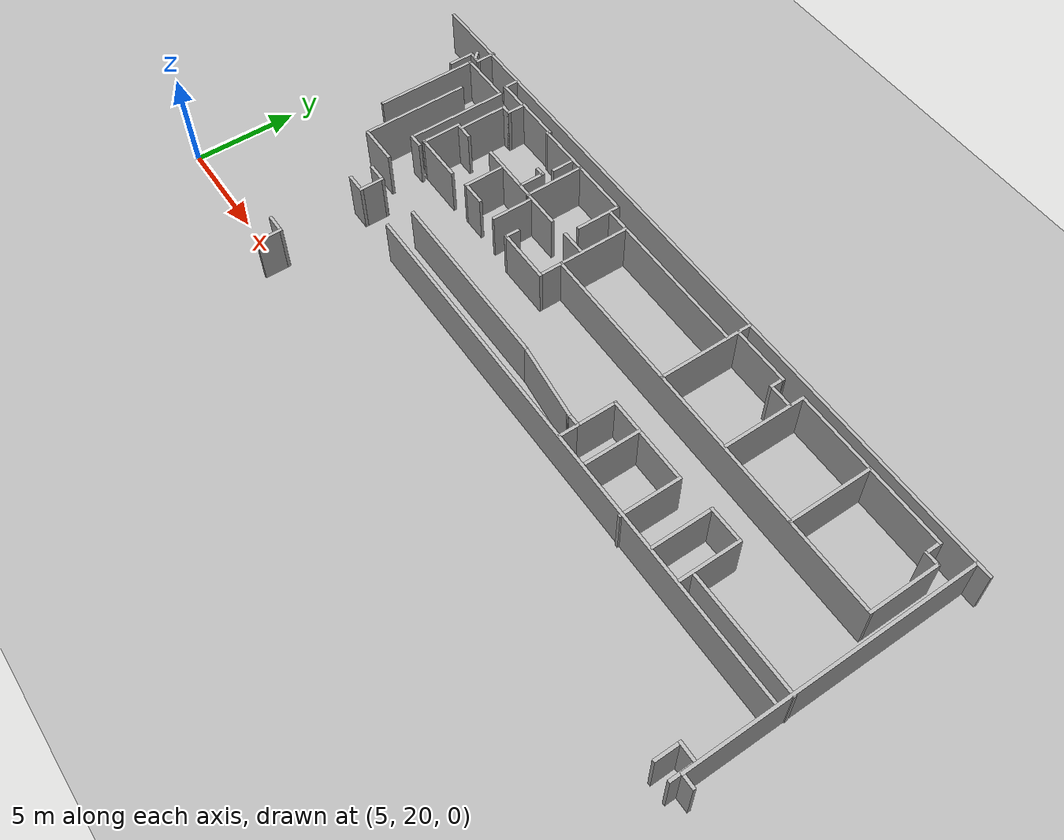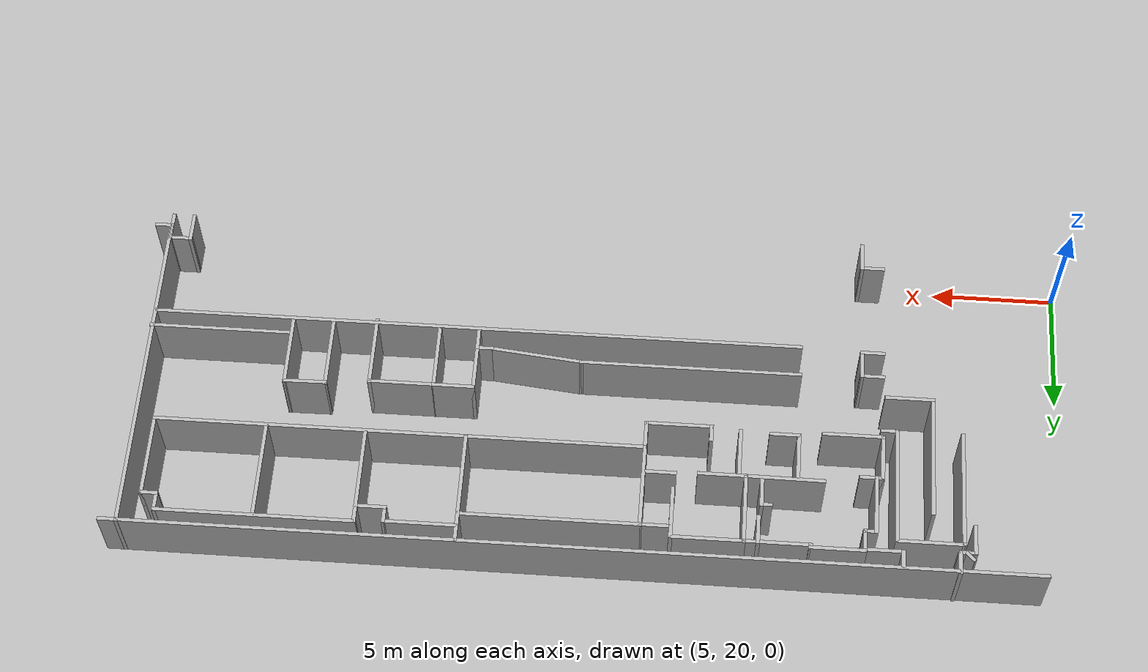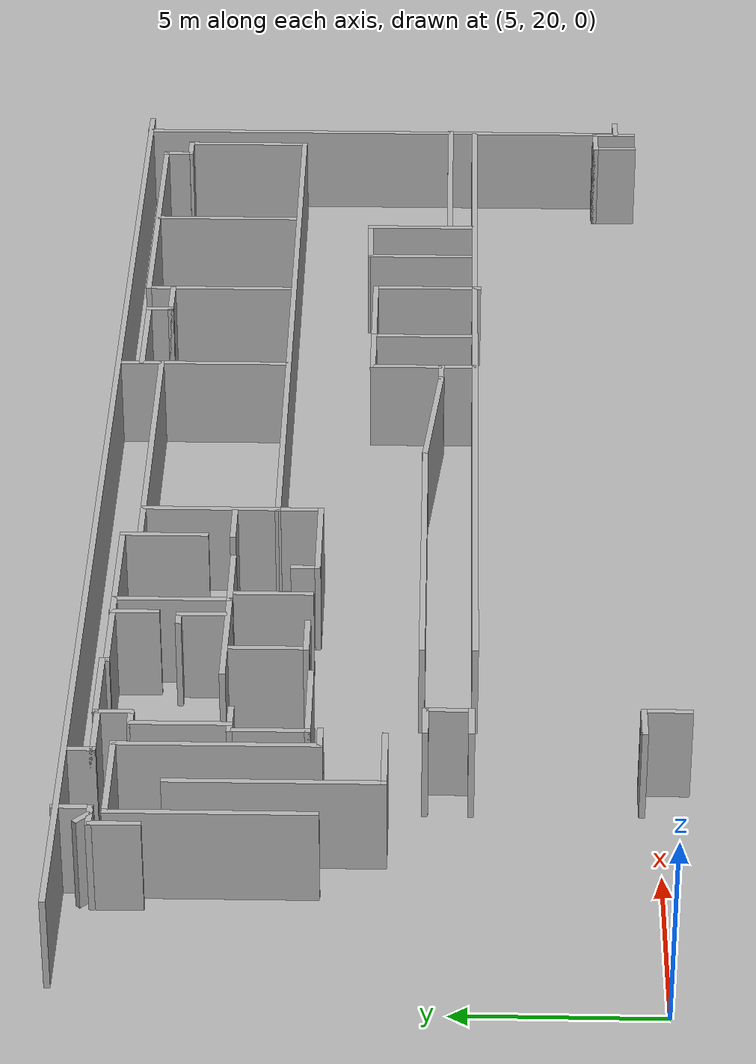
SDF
<sdf version="1.9">
 <world name="tsudanuma2-3">
  <model name="ground_plane">
   <static>true</static>
   <link name="link">
    <collision name="collision">
     <geometry><plane><normal>0 0 1</normal><size>100 100</size></plane></geometry>
     <surface>
      <contact><collide_bitmask>65535</collide_bitmask></contact>
      <friction><ode><mu>100</mu><mu2>50</mu2></ode></friction>
     </surface>
    </collision>
    <visual name="visual">
     <cast_shadows>false</cast_shadows>
     <geometry><plane><normal>0 0 1</normal><size>100 100</size></plane></geometry>
     <material>
      <ambient>0.5 0.5 0.5 1</ambient>
      <diffuse>0.7 0.7 0.7 1</diffuse>
      <specular>0.1 0.1 0.1 1</specular>
     </material>
    </visual>
   </link>
  </model>
  <model name="Tsudanuma_2-3-without_door">
   <pose>11.859500000000001 12.3796 0 0 0 0</pose>
   <link name="Wall_12">
    <collision name="Wall_12_Collision">
     <geometry><box><size>37 0.14999999999999999 2.5</size></box></geometry>
     <pose>0 0 1.25 0 0 0</pose>
    </collision>
    <visual name="Wall_12_Visual">
     <pose>0 0 1.25 0 0 0</pose>
     <geometry><box><size>37 0.14999999999999999 2.5</size></box></geometry>
     <material>
      <ambient>0.5 0.5 0.5 1</ambient>
      <diffuse>0.7 0.7 0.7 1</diffuse>
      <specular>0.1 0.1 0.1 1</specular>
     </material>
     <meta><layer>0</layer></meta>
    </visual>
    <pose>12.4529 21.66 0 0 0 3.1415899999999999</pose>
   </link>
   <link name="Wall_237">
    <collision name="Wall_237_Collision">
     <geometry><box><size>9 0.14999999999999999 2.5</size></box></geometry>
     <pose>0 0 1.25 0 0 0</pose>
    </collision>
    <visual name="Wall_237_Visual">
     <pose>0 0 1.25 0 0 0</pose>
     <geometry><box><size>9 0.14999999999999999 2.5</size></box></geometry>
     <material>
      <ambient>0.5 0.5 0.5 1</ambient>
      <diffuse>0.7 0.7 0.7 1</diffuse>
      <specular>0.1 0.1 0.1 1</specular>
     </material>
     <meta><layer>0</layer></meta>
    </visual>
    <pose>8.2090499999999995 13.3088 0 0 0 0</pose>
   </link>
   <link name="Wall_239">
    <collision name="Wall_239_Collision">
     <geometry><box><size>3.8246099999999998 0.14999999999999999 2.5</size></box></geometry>
     <pose>0 0 1.25 0 0 0</pose>
    </collision>
    <visual name="Wall_239_Visual">
     <pose>0 0 1.25 0 0 0</pose>
     <geometry><box><size>3.8246099999999998 0.14999999999999999 2.5</size></box></geometry>
     <material>
      <ambient>0.5 0.5 0.5 1</ambient>
      <diffuse>0.7 0.7 0.7 1</diffuse>
      <specular>0.1 0.1 0.1 1</specular>
     </material>
     <meta><layer>0</layer></meta>
    </visual>
    <pose>14.4611 13.114800000000001 0 0 0 3.0358299999999998</pose>
   </link>
   <link name="Wall_241">
    <collision name="Wall_241_Collision">
     <geometry><box><size>0.75 0.14999999999999999 2.5</size></box></geometry>
     <pose>0 0 1.25 0 0 0</pose>
    </collision>
    <visual name="Wall_241_Visual">
     <pose>0 0 1.25 0 0 0</pose>
     <geometry><box><size>0.75 0.14999999999999999 2.5</size></box></geometry>
     <material>
      <ambient>0.5 0.5 0.5 1</ambient>
      <diffuse>0.7 0.7 0.7 1</diffuse>
      <specular>0.1 0.1 0.1 1</specular>
     </material>
     <meta><layer>0</layer></meta>
    </visual>
    <pose>16.588100000000001 12.9209 0 0 0 0</pose>
   </link>
   <link name="Wall_242">
    <collision name="Wall_242_Collision">
     <geometry><box><size>2 0.14999999999999999 2.5</size></box></geometry>
     <pose>0 0 1.25 0 0 0</pose>
    </collision>
    <visual name="Wall_242_Visual">
     <pose>0 0 1.25 0 0 0</pose>
     <geometry><box><size>2 0.14999999999999999 2.5</size></box></geometry>
     <material>
      <ambient>0.5 0.5 0.5 1</ambient>
      <diffuse>0.7 0.7 0.7 1</diffuse>
      <specular>0.1 0.1 0.1 1</specular>
     </material>
     <meta><layer>0</layer></meta>
    </visual>
    <pose>16.888100000000001 13.8459 0 0 0 1.5708</pose>
   </link>
   <link name="Wall_243">
    <collision name="Wall_243_Collision">
     <geometry><box><size>1.75 0.14999999999999999 2.5</size></box></geometry>
     <pose>0 0 1.25 0 0 0</pose>
    </collision>
    <visual name="Wall_243_Visual">
     <pose>0 0 1.25 0 0 0</pose>
     <geometry><box><size>1.75 0.14999999999999999 2.5</size></box></geometry>
     <material>
      <ambient>0.5 0.5 0.5 1</ambient>
      <diffuse>0.7 0.7 0.7 1</diffuse>
      <specular>0.1 0.1 0.1 1</specular>
     </material>
     <meta><layer>0</layer></meta>
    </visual>
    <pose>17.688099999999999 14.770899999999999 0 0 0 0</pose>
   </link>
   <link name="Wall_244">
    <collision name="Wall_244_Collision">
     <geometry><box><size>2.75 0.14999999999999999 2.5</size></box></geometry>
     <pose>0 0 1.25 0 0 0</pose>
    </collision>
    <visual name="Wall_244_Visual">
     <pose>0 0 1.25 0 0 0</pose>
     <geometry><box><size>2.75 0.14999999999999999 2.5</size></box></geometry>
     <material>
      <ambient>0.5 0.5 0.5 1</ambient>
      <diffuse>0.7 0.7 0.7 1</diffuse>
      <specular>0.1 0.1 0.1 1</specular>
     </material>
     <meta><layer>0</layer></meta>
    </visual>
    <pose>18.488099999999999 13.4709 0 0 0 -1.5708</pose>
   </link>
   <link name="Wall_246">
    <collision name="Wall_246_Collision">
     <geometry><box><size>1 0.14999999999999999 2.5</size></box></geometry>
     <pose>0 0 1.25 0 0 0</pose>
    </collision>
    <visual name="Wall_246_Visual">
     <pose>0 0 1.25 0 0 0</pose>
     <geometry><box><size>1 0.14999999999999999 2.5</size></box></geometry>
     <material>
      <ambient>0.5 0.5 0.5 1</ambient>
      <diffuse>0.7 0.7 0.7 1</diffuse>
      <specular>0.1 0.1 0.1 1</specular>
     </material>
     <meta><layer>0</layer></meta>
    </visual>
    <pose>16.888100000000001 12.495900000000001 0 0 0 -1.5708</pose>
   </link>
   <link name="Wall_248">
    <collision name="Wall_248_Collision">
     <geometry><box><size>2.75 0.14999999999999999 2.5</size></box></geometry>
     <pose>0 0 1.25 0 0 0</pose>
    </collision>
    <visual name="Wall_248_Visual">
     <pose>0 0 1.25 0 0 0</pose>
     <geometry><box><size>2.75 0.14999999999999999 2.5</size></box></geometry>
     <material>
      <ambient>0.5 0.5 0.5 1</ambient>
      <diffuse>0.7 0.7 0.7 1</diffuse>
      <specular>0.1 0.1 0.1 1</specular>
     </material>
     <meta><layer>0</layer></meta>
    </visual>
    <pose>19.7881 14.770899999999999 0 0 0 0</pose>
   </link>
   <link name="Wall_249">
    <collision name="Wall_249_Collision">
     <geometry><box><size>3 0.14999999999999999 2.5</size></box></geometry>
     <pose>0 0 1.25 0 0 0</pose>
    </collision>
    <visual name="Wall_249_Visual">
     <pose>0 0 1.25 0 0 0</pose>
     <geometry><box><size>3 0.14999999999999999 2.5</size></box></geometry>
     <material>
      <ambient>0.5 0.5 0.5 1</ambient>
      <diffuse>0.7 0.7 0.7 1</diffuse>
      <specular>0.1 0.1 0.1 1</specular>
     </material>
     <meta><layer>0</layer></meta>
    </visual>
    <pose>21.088100000000001 13.3459 0 0 0 -1.5708</pose>
   </link>
   <link name="Wall_251">
    <collision name="Wall_251_Collision">
     <geometry><box><size>3 0.14999999999999999 2.5</size></box></geometry>
     <pose>0 0 1.25 0 0 0</pose>
    </collision>
    <visual name="Wall_251_Visual">
     <pose>0 0 1.25 0 0 0</pose>
     <geometry><box><size>3 0.14999999999999999 2.5</size></box></geometry>
     <material>
      <ambient>0.5 0.5 0.5 1</ambient>
      <diffuse>0.7 0.7 0.7 1</diffuse>
      <specular>0.1 0.1 0.1 1</specular>
     </material>
     <meta><layer>0</layer></meta>
    </visual>
    <pose>22.851900000000001 13.535299999999999 0 0 0 1.5708</pose>
   </link>
   <link name="Wall_252">
    <collision name="Wall_252_Collision">
     <geometry><box><size>1.78264 0.14999999999999999 2.5</size></box></geometry>
     <pose>0 0 1.25 0 0 0</pose>
    </collision>
    <visual name="Wall_252_Visual">
     <pose>0 0 1.25 0 0 0</pose>
     <geometry><box><size>1.78264 0.14999999999999999 2.5</size></box></geometry>
     <material>
      <ambient>0.5 0.5 0.5 1</ambient>
      <diffuse>0.7 0.7 0.7 1</diffuse>
      <specular>0.1 0.1 0.1 1</specular>
     </material>
     <meta><layer>0</layer></meta>
    </visual>
    <pose>23.668199999999999 14.9702 0 0 0 0.012109999999999999</pose>
   </link>
   <link name="Wall_253">
    <collision name="Wall_253_Collision">
     <geometry><box><size>3 0.14999999999999999 2.5</size></box></geometry>
     <pose>0 0 1.25 0 0 0</pose>
    </collision>
    <visual name="Wall_253_Visual">
     <pose>0 0 1.25 0 0 0</pose>
     <geometry><box><size>3 0.14999999999999999 2.5</size></box></geometry>
     <material>
      <ambient>0.5 0.5 0.5 1</ambient>
      <diffuse>0.7 0.7 0.7 1</diffuse>
      <specular>0.1 0.1 0.1 1</specular>
     </material>
     <meta><layer>0</layer></meta>
    </visual>
    <pose>24.504200000000001 13.555 0 0 0 -1.5708</pose>
   </link>
   <link name="Wall_256">
    <collision name="Wall_256_Collision">
     <geometry><box><size>5.75 0.14999999999999999 2.5</size></box></geometry>
     <pose>0 0 1.25 0 0 0</pose>
    </collision>
    <visual name="Wall_256_Visual">
     <pose>0 0 1.25 0 0 0</pose>
     <geometry><box><size>5.75 0.14999999999999999 2.5</size></box></geometry>
     <material>
      <ambient>0.5 0.5 0.5 1</ambient>
      <diffuse>0.7 0.7 0.7 1</diffuse>
      <specular>0.1 0.1 0.1 1</specular>
     </material>
     <meta><layer>0</layer></meta>
    </visual>
    <pose>27.454999999999998 12.7232 0 0 0 3.1415899999999999</pose>
   </link>
   <link name="Wall_258">
    <collision name="Wall_258_Collision">
     <geometry><box><size>14 0.14999999999999999 2.5</size></box></geometry>
     <pose>0 0 1.25 0 0 0</pose>
    </collision>
    <visual name="Wall_258_Visual">
     <pose>0 0 1.25 0 0 0</pose>
     <geometry><box><size>14 0.14999999999999999 2.5</size></box></geometry>
     <material>
      <ambient>0.5 0.5 0.5 1</ambient>
      <diffuse>0.7 0.7 0.7 1</diffuse>
      <specular>0.1 0.1 0.1 1</specular>
     </material>
     <meta><layer>0</layer></meta>
    </visual>
    <pose>30.213100000000001 14.7469 0 0 0 -1.5708</pose>
   </link>
   <link name="Wall_260">
    <collision name="Wall_260_Collision">
     <geometry><box><size>0.75 0.14999999999999999 2.5</size></box></geometry>
     <pose>0 0 1.25 0 0 0</pose>
    </collision>
    <visual name="Wall_260_Visual">
     <pose>0 0 1.25 0 0 0</pose>
     <geometry><box><size>0.75 0.14999999999999999 2.5</size></box></geometry>
     <material>
      <ambient>0.5 0.5 0.5 1</ambient>
      <diffuse>0.7 0.7 0.7 1</diffuse>
      <specular>0.1 0.1 0.1 1</specular>
     </material>
     <meta><layer>0</layer></meta>
    </visual>
    <pose>30.513100000000001 7.82186 0 0 0 0</pose>
   </link>
   <link name="Wall_262">
    <collision name="Wall_262_Collision">
     <geometry><box><size>3.5 0.14999999999999999 2.5</size></box></geometry>
     <pose>0 0 1.25 0 0 0</pose>
    </collision>
    <visual name="Wall_262_Visual">
     <pose>0 0 1.25 0 0 0</pose>
     <geometry><box><size>3.5 0.14999999999999999 2.5</size></box></geometry>
     <material>
      <ambient>0.5 0.5 0.5 1</ambient>
      <diffuse>0.7 0.7 0.7 1</diffuse>
      <specular>0.1 0.1 0.1 1</specular>
     </material>
     <meta><layer>0</layer></meta>
    </visual>
    <pose>29.435600000000001 18.726299999999998 0 0 0 -1.5708</pose>
   </link>
   <link name="Wall_263">
    <collision name="Wall_263_Collision">
     <geometry><box><size>19.75 0.14999999999999999 2.5</size></box></geometry>
     <pose>0 0 1.25 0 0 0</pose>
    </collision>
    <visual name="Wall_263_Visual">
     <pose>0 0 1.25 0 0 0</pose>
     <geometry><box><size>19.75 0.14999999999999999 2.5</size></box></geometry>
     <material>
      <ambient>0.5 0.5 0.5 1</ambient>
      <diffuse>0.7 0.7 0.7 1</diffuse>
      <specular>0.1 0.1 0.1 1</specular>
     </material>
     <meta><layer>0</layer></meta>
    </visual>
    <pose>19.6356 17.051300000000001 0 0 0 3.1415899999999999</pose>
   </link>
   <link name="Wall_264">
    <collision name="Wall_264_Collision">
     <geometry><box><size>1.25 0.14999999999999999 2.5</size></box></geometry>
     <pose>0 0 1.25 0 0 0</pose>
    </collision>
    <visual name="Wall_264_Visual">
     <pose>0 0 1.25 0 0 0</pose>
     <geometry><box><size>1.25 0.14999999999999999 2.5</size></box></geometry>
     <material>
      <ambient>0.5 0.5 0.5 1</ambient>
      <diffuse>0.7 0.7 0.7 1</diffuse>
      <specular>0.1 0.1 0.1 1</specular>
     </material>
     <meta><layer>0</layer></meta>
    </visual>
    <pose>9.8356399999999997 16.501300000000001 0 0 0 -1.5708</pose>
   </link>
   <link name="Wall_265">
    <collision name="Wall_265_Collision">
     <geometry><box><size>2.75 0.14999999999999999 2.5</size></box></geometry>
     <pose>0 0 1.25 0 0 0</pose>
    </collision>
    <visual name="Wall_265_Visual">
     <pose>0 0 1.25 0 0 0</pose>
     <geometry><box><size>2.75 0.14999999999999999 2.5</size></box></geometry>
     <material>
      <ambient>0.5 0.5 0.5 1</ambient>
      <diffuse>0.7 0.7 0.7 1</diffuse>
      <specular>0.1 0.1 0.1 1</specular>
     </material>
     <meta><layer>0</layer></meta>
    </visual>
    <pose>8.5356400000000008 15.9513 0 0 0 3.1415899999999999</pose>
   </link>
   <link name="Wall_266">
    <collision name="Wall_266_Collision">
     <geometry><box><size>0.75 0.14999999999999999 2.5</size></box></geometry>
     <pose>0 0 1.25 0 0 0</pose>
    </collision>
    <visual name="Wall_266_Visual">
     <pose>0 0 1.25 0 0 0</pose>
     <geometry><box><size>0.75 0.14999999999999999 2.5</size></box></geometry>
     <material>
      <ambient>0.5 0.5 0.5 1</ambient>
      <diffuse>0.7 0.7 0.7 1</diffuse>
      <specular>0.1 0.1 0.1 1</specular>
     </material>
     <meta><layer>0</layer></meta>
    </visual>
    <pose>7.2356400000000001 16.251300000000001 0 0 0 1.5708</pose>
   </link>
   <link name="Wall_268">
    <collision name="Wall_268_Collision">
     <geometry><box><size>0.75 0.14999999999999999 2.5</size></box></geometry>
     <pose>0 0 1.25 0 0 0</pose>
    </collision>
    <visual name="Wall_268_Visual">
     <pose>0 0 1.25 0 0 0</pose>
     <geometry><box><size>0.75 0.14999999999999999 2.5</size></box></geometry>
     <material>
      <ambient>0.5 0.5 0.5 1</ambient>
      <diffuse>0.7 0.7 0.7 1</diffuse>
      <specular>0.1 0.1 0.1 1</specular>
     </material>
     <meta><layer>0</layer></meta>
    </visual>
    <pose>28.8218 20.806100000000001 0 0 0 -1.5708</pose>
   </link>
   <link name="Wall_271">
    <collision name="Wall_271_Collision">
     <geometry><box><size>0.75 0.14999999999999999 2.5</size></box></geometry>
     <pose>0 0 1.25 0 0 0</pose>
    </collision>
    <visual name="Wall_271_Visual">
     <pose>0 0 1.25 0 0 0</pose>
     <geometry><box><size>0.75 0.14999999999999999 2.5</size></box></geometry>
     <material>
      <ambient>0.5 0.5 0.5 1</ambient>
      <diffuse>0.7 0.7 0.7 1</diffuse>
      <specular>0.1 0.1 0.1 1</specular>
     </material>
     <meta><layer>0</layer></meta>
    </visual>
    <pose>29.1356 20.401299999999999 0 0 0 3.1415899999999999</pose>
   </link>
   <link name="Wall_273">
    <collision name="Wall_273_Collision">
     <geometry><box><size>8 0.14999999999999999 2.5</size></box></geometry>
     <pose>0 0 1.25 0 0 0</pose>
    </collision>
    <visual name="Wall_273_Visual">
     <pose>0 0 1.25 0 0 0</pose>
     <geometry><box><size>8 0.14999999999999999 2.5</size></box></geometry>
     <material>
      <ambient>0.5 0.5 0.5 1</ambient>
      <diffuse>0.7 0.7 0.7 1</diffuse>
      <specular>0.1 0.1 0.1 1</specular>
     </material>
     <meta><layer>0</layer></meta>
    </visual>
    <pose>24.896799999999999 21.106100000000001 0 0 0 3.1415899999999999</pose>
   </link>
   <link name="Wall_274">
    <collision name="Wall_274_Collision">
     <geometry><box><size>4.0999999999999996 0.14999999999999999 2.5</size></box></geometry>
     <pose>0 0 1.25 0 0 0</pose>
    </collision>
    <visual name="Wall_274_Visual">
     <pose>0 0 1.25 0 0 0</pose>
     <geometry><box><size>4.0999999999999996 0.14999999999999999 2.5</size></box></geometry>
     <material>
      <ambient>0.5 0.5 0.5 1</ambient>
      <diffuse>0.7 0.7 0.7 1</diffuse>
      <specular>0.1 0.1 0.1 1</specular>
     </material>
     <meta><layer>0</layer></meta>
    </visual>
    <pose>20.971800000000002 19.1311 0 0 0 -1.5708</pose>
   </link>
   <link name="Wall_276">
    <collision name="Wall_276_Collision">
     <geometry><box><size>4.0999999999999996 0.14999999999999999 2.5</size></box></geometry>
     <pose>0 0 1.25 0 0 0</pose>
    </collision>
    <visual name="Wall_276_Visual">
     <pose>0 0 1.25 0 0 0</pose>
     <geometry><box><size>4.0999999999999996 0.14999999999999999 2.5</size></box></geometry>
     <material>
      <ambient>0.5 0.5 0.5 1</ambient>
      <diffuse>0.7 0.7 0.7 1</diffuse>
      <specular>0.1 0.1 0.1 1</specular>
     </material>
     <meta><layer>0</layer></meta>
    </visual>
    <pose>24.9422 19.0655 0 0 0 1.5708</pose>
   </link>
   <link name="Wall_278">
    <collision name="Wall_278_Collision">
     <geometry><box><size>4.7000000000000002 0.14999999999999999 2.5</size></box></geometry>
     <pose>0 0 1.25 0 0 0</pose>
    </collision>
    <visual name="Wall_278_Visual">
     <pose>0 0 1.25 0 0 0</pose>
     <geometry><box><size>4.7000000000000002 0.14999999999999999 2.5</size></box></geometry>
     <material>
      <ambient>0.5 0.5 0.5 1</ambient>
      <diffuse>0.7 0.7 0.7 1</diffuse>
      <specular>0.1 0.1 0.1 1</specular>
     </material>
     <meta><layer>0</layer></meta>
    </visual>
    <pose>16.9617 19.354199999999999 0 0 0 1.5708</pose>
   </link>
   <link name="Wall_280">
    <collision name="Wall_280_Collision">
     <geometry><box><size>3 0.14999999999999999 2.5</size></box></geometry>
     <pose>0 0 1.25 0 0 0</pose>
    </collision>
    <visual name="Wall_280_Visual">
     <pose>0 0 1.25 0 0 0</pose>
     <geometry><box><size>3 0.14999999999999999 2.5</size></box></geometry>
     <material>
      <ambient>0.5 0.5 0.5 1</ambient>
      <diffuse>0.7 0.7 0.7 1</diffuse>
      <specular>0.1 0.1 0.1 1</specular>
     </material>
     <meta><layer>0</layer></meta>
    </visual>
    <pose>18.398 21.0242 0 0 0 0</pose>
   </link>
   <link name="Wall_281">
    <collision name="Wall_281_Collision">
     <geometry><box><size>0.75 0.14999999999999999 2.5</size></box></geometry>
     <pose>0 0 1.25 0 0 0</pose>
    </collision>
    <visual name="Wall_281_Visual">
     <pose>0 0 1.25 0 0 0</pose>
     <geometry><box><size>0.75 0.14999999999999999 2.5</size></box></geometry>
     <material>
      <ambient>0.5 0.5 0.5 1</ambient>
      <diffuse>0.7 0.7 0.7 1</diffuse>
      <specular>0.1 0.1 0.1 1</specular>
     </material>
     <meta><layer>0</layer></meta>
    </visual>
    <pose>19.823 20.7242 0 0 0 -1.5708</pose>
   </link>
   <link name="Wall_282">
    <collision name="Wall_282_Collision">
     <geometry><box><size>1.25 0.14999999999999999 2.5</size></box></geometry>
     <pose>0 0 1.25 0 0 0</pose>
    </collision>
    <visual name="Wall_282_Visual">
     <pose>0 0 1.25 0 0 0</pose>
     <geometry><box><size>1.25 0.14999999999999999 2.5</size></box></geometry>
     <material>
      <ambient>0.5 0.5 0.5 1</ambient>
      <diffuse>0.7 0.7 0.7 1</diffuse>
      <specular>0.1 0.1 0.1 1</specular>
     </material>
     <meta><layer>0</layer></meta>
    </visual>
    <pose>20.373000000000001 20.424199999999999 0 0 0 0</pose>
   </link>
   <link name="Wall_284">
    <collision name="Wall_284_Collision">
     <geometry><box><size>7.25 0.14999999999999999 2.5</size></box></geometry>
     <pose>0 0 1.25 0 0 0</pose>
    </collision>
    <visual name="Wall_284_Visual">
     <pose>0 0 1.25 0 0 0</pose>
     <geometry><box><size>7.25 0.14999999999999999 2.5</size></box></geometry>
     <material>
      <ambient>0.5 0.5 0.5 1</ambient>
      <diffuse>0.7 0.7 0.7 1</diffuse>
      <specular>0.1 0.1 0.1 1</specular>
     </material>
     <meta><layer>0</layer></meta>
    </visual>
    <pose>13.400399999999999 20.492999999999999 0 0 0 3.1415899999999999</pose>
   </link>
   <link name="Wall_285">
    <collision name="Wall_285_Collision">
     <geometry><box><size>3.59171 0.14999999999999999 2.5</size></box></geometry>
     <pose>0 0 1.25 0 0 0</pose>
    </collision>
    <visual name="Wall_285_Visual">
     <pose>0 0 1.25 0 0 0</pose>
     <geometry><box><size>3.59171 0.14999999999999999 2.5</size></box></geometry>
     <material>
      <ambient>0.5 0.5 0.5 1</ambient>
      <diffuse>0.7 0.7 0.7 1</diffuse>
      <specular>0.1 0.1 0.1 1</specular>
     </material>
     <meta><layer>0</layer></meta>
    </visual>
    <pose>9.8430099999999996 18.772099999999998 0 0 0 -1.57508</pose>
   </link>
   <link name="Wall_287">
    <collision name="Wall_287_Collision">
     <geometry><box><size>1.25 0.14999999999999999 2.5</size></box></geometry>
     <pose>0 0 1.25 0 0 0</pose>
    </collision>
    <visual name="Wall_287_Visual">
     <pose>0 0 1.25 0 0 0</pose>
     <geometry><box><size>1.25 0.14999999999999999 2.5</size></box></geometry>
     <material>
      <ambient>0.5 0.5 0.5 1</ambient>
      <diffuse>0.7 0.7 0.7 1</diffuse>
      <specular>0.1 0.1 0.1 1</specular>
     </material>
     <meta><layer>0</layer></meta>
    </visual>
    <pose>9.3003900000000002 20.492999999999999 0 0 0 3.1415899999999999</pose>
   </link>
   <link name="Wall_289">
    <collision name="Wall_289_Collision">
     <geometry><box><size>2.25 0.14999999999999999 2.5</size></box></geometry>
     <pose>0 0 1.25 0 0 0</pose>
    </collision>
    <visual name="Wall_289_Visual">
     <pose>0 0 1.25 0 0 0</pose>
     <geometry><box><size>2.25 0.14999999999999999 2.5</size></box></geometry>
     <material>
      <ambient>0.5 0.5 0.5 1</ambient>
      <diffuse>0.7 0.7 0.7 1</diffuse>
      <specular>0.1 0.1 0.1 1</specular>
     </material>
     <meta><layer>0</layer></meta>
    </visual>
    <pose>8.6420399999999997 19.883800000000001 0 0 0 -1.5708</pose>
   </link>
   <link name="Wall_291">
    <collision name="Wall_291_Collision">
     <geometry><box><size>3 0.14999999999999999 2.5</size></box></geometry>
     <pose>0 0 1.25 0 0 0</pose>
    </collision>
    <visual name="Wall_291_Visual">
     <pose>0 0 1.25 0 0 0</pose>
     <geometry><box><size>3 0.14999999999999999 2.5</size></box></geometry>
     <material>
      <ambient>0.5 0.5 0.5 1</ambient>
      <diffuse>0.7 0.7 0.7 1</diffuse>
      <specular>0.1 0.1 0.1 1</specular>
     </material>
     <meta><layer>0</layer></meta>
    </visual>
    <pose>7.2170399999999999 20.933800000000002 0 0 0 3.1415899999999999</pose>
   </link>
   <link name="Wall_292">
    <collision name="Wall_292_Collision">
     <geometry><box><size>3 0.14999999999999999 2.5</size></box></geometry>
     <pose>0 0 1.25 0 0 0</pose>
    </collision>
    <visual name="Wall_292_Visual">
     <pose>0 0 1.25 0 0 0</pose>
     <geometry><box><size>3 0.14999999999999999 2.5</size></box></geometry>
     <material>
      <ambient>0.5 0.5 0.5 1</ambient>
      <diffuse>0.7 0.7 0.7 1</diffuse>
      <specular>0.1 0.1 0.1 1</specular>
     </material>
     <meta><layer>0</layer></meta>
    </visual>
    <pose>5.7920400000000001 19.508800000000001 0 0 0 -1.5708</pose>
   </link>
   <link name="Wall_293">
    <collision name="Wall_293_Collision">
     <geometry><box><size>2 0.14999999999999999 2.5</size></box></geometry>
     <pose>0 0 1.25 0 0 0</pose>
    </collision>
    <visual name="Wall_293_Visual">
     <pose>0 0 1.25 0 0 0</pose>
     <geometry><box><size>2 0.14999999999999999 2.5</size></box></geometry>
     <material>
      <ambient>0.5 0.5 0.5 1</ambient>
      <diffuse>0.7 0.7 0.7 1</diffuse>
      <specular>0.1 0.1 0.1 1</specular>
     </material>
     <meta><layer>0</layer></meta>
    </visual>
    <pose>6.7170399999999999 18.0838 0 0 0 0</pose>
   </link>
   <link name="Wall_296">
    <collision name="Wall_296_Collision">
     <geometry><box><size>2 0.14999999999999999 2.5</size></box></geometry>
     <pose>0 0 1.25 0 0 0</pose>
    </collision>
    <visual name="Wall_296_Visual">
     <pose>0 0 1.25 0 0 0</pose>
     <geometry><box><size>2 0.14999999999999999 2.5</size></box></geometry>
     <material>
      <ambient>0.5 0.5 0.5 1</ambient>
      <diffuse>0.7 0.7 0.7 1</diffuse>
      <specular>0.1 0.1 0.1 1</specular>
     </material>
     <meta><layer>0</layer></meta>
    </visual>
    <pose>6.07606 17.009399999999999 0 0 0 1.5708</pose>
   </link>
   <link name="Wall_298">
    <collision name="Wall_298_Collision">
     <geometry><box><size>1.25 0.14999999999999999 2.5</size></box></geometry>
     <pose>0 0 1.25 0 0 0</pose>
    </collision>
    <visual name="Wall_298_Visual">
     <pose>0 0 1.25 0 0 0</pose>
     <geometry><box><size>1.25 0.14999999999999999 2.5</size></box></geometry>
     <material>
      <ambient>0.5 0.5 0.5 1</ambient>
      <diffuse>0.7 0.7 0.7 1</diffuse>
      <specular>0.1 0.1 0.1 1</specular>
     </material>
     <meta><layer>0</layer></meta>
    </visual>
    <pose>9.1581299999999999 18.1417 0 0 0 0</pose>
   </link>
   <link name="Wall_300">
    <collision name="Wall_300_Collision">
     <geometry><box><size>1.25 0.14999999999999999 2.5</size></box></geometry>
     <pose>0 0 1.25 0 0 0</pose>
    </collision>
    <visual name="Wall_300_Visual">
     <pose>0 0 1.25 0 0 0</pose>
     <geometry><box><size>1.25 0.14999999999999999 2.5</size></box></geometry>
     <material>
      <ambient>0.5 0.5 0.5 1</ambient>
      <diffuse>0.7 0.7 0.7 1</diffuse>
      <specular>0.1 0.1 0.1 1</specular>
     </material>
     <meta><layer>0</layer></meta>
    </visual>
    <pose>4.30525 16.118400000000001 0 0 0 3.1415899999999999</pose>
   </link>
   <link name="Wall_301">
    <collision name="Wall_301_Collision">
     <geometry><box><size>2 0.14999999999999999 2.5</size></box></geometry>
     <pose>0 0 1.25 0 0 0</pose>
    </collision>
    <visual name="Wall_301_Visual">
     <pose>0 0 1.25 0 0 0</pose>
     <geometry><box><size>2 0.14999999999999999 2.5</size></box></geometry>
     <material>
      <ambient>0.5 0.5 0.5 1</ambient>
      <diffuse>0.7 0.7 0.7 1</diffuse>
      <specular>0.1 0.1 0.1 1</specular>
     </material>
     <meta><layer>0</layer></meta>
    </visual>
    <pose>3.7552500000000002 17.043399999999998 0 0 0 1.5708</pose>
   </link>
   <link name="Wall_303">
    <collision name="Wall_303_Collision">
     <geometry><box><size>3.2120199999999999 0.14999999999999999 2.5</size></box></geometry>
     <pose>0 0 1.25 0 0 0</pose>
    </collision>
    <visual name="Wall_303_Visual">
     <pose>0 0 1.25 0 0 0</pose>
     <geometry><box><size>3.2120199999999999 0.14999999999999999 2.5</size></box></geometry>
     <material>
      <ambient>0.5 0.5 0.5 1</ambient>
      <diffuse>0.7 0.7 0.7 1</diffuse>
      <specular>0.1 0.1 0.1 1</specular>
     </material>
     <meta><layer>0</layer></meta>
    </visual>
    <pose>4.2610799999999998 18.095800000000001 0 0 0 -0.0078480000000000025</pose>
   </link>
   <link name="Wall_305">
    <collision name="Wall_305_Collision">
     <geometry><box><size>0.5 0.14999999999999999 2.5</size></box></geometry>
     <pose>0 0 1.25 0 0 0</pose>
    </collision>
    <visual name="Wall_305_Visual">
     <pose>0 0 1.25 0 0 0</pose>
     <geometry><box><size>0.5 0.14999999999999999 2.5</size></box></geometry>
     <material>
      <ambient>0.5 0.5 0.5 1</ambient>
      <diffuse>0.7 0.7 0.7 1</diffuse>
      <specular>0.1 0.1 0.1 1</specular>
     </material>
     <meta><layer>0</layer></meta>
    </visual>
    <pose>4.9737299999999998 19.294699999999999 0 0 0 0</pose>
   </link>
   <link name="Wall_306">
    <collision name="Wall_306_Collision">
     <geometry><box><size>1.25 0.14999999999999999 2.5</size></box></geometry>
     <pose>0 0 1.25 0 0 0</pose>
    </collision>
    <visual name="Wall_306_Visual">
     <pose>0 0 1.25 0 0 0</pose>
     <geometry><box><size>1.25 0.14999999999999999 2.5</size></box></geometry>
     <material>
      <ambient>0.5 0.5 0.5 1</ambient>
      <diffuse>0.7 0.7 0.7 1</diffuse>
      <specular>0.1 0.1 0.1 1</specular>
     </material>
     <meta><layer>0</layer></meta>
    </visual>
    <pose>5.1487299999999996 18.744700000000002 0 0 0 -1.5708</pose>
   </link>
   <link name="Wall_310">
    <collision name="Wall_310_Collision">
     <geometry><box><size>2.75 0.14999999999999999 2.5</size></box></geometry>
     <pose>0 0 1.25 0 0 0</pose>
    </collision>
    <visual name="Wall_310_Visual">
     <pose>0 0 1.25 0 0 0</pose>
     <geometry><box><size>2.75 0.14999999999999999 2.5</size></box></geometry>
     <material>
      <ambient>0.5 0.5 0.5 1</ambient>
      <diffuse>0.7 0.7 0.7 1</diffuse>
      <specular>0.1 0.1 0.1 1</specular>
     </material>
     <meta><layer>0</layer></meta>
    </visual>
    <pose>4.4920499999999999 20.933800000000002 0 0 0 3.1415899999999999</pose>
   </link>
   <link name="Wall_312">
    <collision name="Wall_312_Collision">
     <geometry><box><size>1.25 0.14999999999999999 2.5</size></box></geometry>
     <pose>0 0 1.25 0 0 0</pose>
    </collision>
    <visual name="Wall_312_Visual">
     <pose>0 0 1.25 0 0 0</pose>
     <geometry><box><size>1.25 0.14999999999999999 2.5</size></box></geometry>
     <material>
      <ambient>0.5 0.5 0.5 1</ambient>
      <diffuse>0.7 0.7 0.7 1</diffuse>
      <specular>0.1 0.1 0.1 1</specular>
     </material>
     <meta><layer>0</layer></meta>
    </visual>
    <pose>5.2395800000000001 20.398599999999998 0 0 0 1.5708</pose>
   </link>
   <link name="Wall_317">
    <collision name="Wall_317_Collision">
     <geometry><box><size>0.25 0.14999999999999999 2.5</size></box></geometry>
     <pose>0 0 1.25 0 0 0</pose>
    </collision>
    <visual name="Wall_317_Visual">
     <pose>0 0 1.25 0 0 0</pose>
     <geometry><box><size>0.25 0.14999999999999999 2.5</size></box></geometry>
     <material>
      <ambient>0.5 0.5 0.5 1</ambient>
      <diffuse>0.7 0.7 0.7 1</diffuse>
      <specular>0.1 0.1 0.1 1</specular>
     </material>
     <meta><layer>0</layer></meta>
    </visual>
    <pose>3.19204 20.983799999999999 0 0 0 1.5708</pose>
   </link>
   <link name="Wall_318">
    <collision name="Wall_318_Collision">
     <geometry><box><size>2.25 0.14999999999999999 2.5</size></box></geometry>
     <pose>0 0 1.25 0 0 0</pose>
    </collision>
    <visual name="Wall_318_Visual">
     <pose>0 0 1.25 0 0 0</pose>
     <geometry><box><size>2.25 0.14999999999999999 2.5</size></box></geometry>
     <material>
      <ambient>0.5 0.5 0.5 1</ambient>
      <diffuse>0.7 0.7 0.7 1</diffuse>
      <specular>0.1 0.1 0.1 1</specular>
     </material>
     <meta><layer>0</layer></meta>
    </visual>
    <pose>2.1420400000000002 21.033799999999999 0 0 0 3.1415899999999999</pose>
   </link>
   <link name="Wall_319">
    <collision name="Wall_319_Collision">
     <geometry><box><size>1 0.14999999999999999 2.5</size></box></geometry>
     <pose>0 0 1.25 0 0 0</pose>
    </collision>
    <visual name="Wall_319_Visual">
     <pose>0 0 1.25 0 0 0</pose>
     <geometry><box><size>1 0.14999999999999999 2.5</size></box></geometry>
     <material>
      <ambient>0.5 0.5 0.5 1</ambient>
      <diffuse>0.7 0.7 0.7 1</diffuse>
      <specular>0.1 0.1 0.1 1</specular>
     </material>
     <meta><layer>0</layer></meta>
    </visual>
    <pose>1.0920399999999999 20.608799999999999 0 0 0 -1.5708</pose>
   </link>
   <link name="Wall_320">
    <collision name="Wall_320_Collision">
     <geometry><box><size>0.58449600000000002 0.14999999999999999 2.5</size></box></geometry>
     <pose>0 0 1.25 0 0 0</pose>
    </collision>
    <visual name="Wall_320_Visual">
     <pose>0 0 1.25 0 0 0</pose>
     <geometry><box><size>0.58449600000000002 0.14999999999999999 2.5</size></box></geometry>
     <material>
      <ambient>0.5 0.5 0.5 1</ambient>
      <diffuse>0.7 0.7 0.7 1</diffuse>
      <specular>0.1 0.1 0.1 1</specular>
     </material>
     <meta><layer>0</layer></meta>
    </visual>
    <pose>0.87479600000000002 20.183800000000002 0 0 0 3.1415899999999999</pose>
   </link>
   <link name="Wall_321">
    <collision name="Wall_321_Collision">
     <geometry><box><size>2.5 0.14999999999999999 2.5</size></box></geometry>
     <pose>0 0 1.25 0 0 0</pose>
    </collision>
    <visual name="Wall_321_Visual">
     <pose>0 0 1.25 0 0 0</pose>
     <geometry><box><size>2.5 0.14999999999999999 2.5</size></box></geometry>
     <material>
      <ambient>0.5 0.5 0.5 1</ambient>
      <diffuse>0.7 0.7 0.7 1</diffuse>
      <specular>0.1 0.1 0.1 1</specular>
     </material>
     <meta><layer>0</layer></meta>
    </visual>
    <pose>0.65754800000000002 19.002300000000002 0 0 0 -1.5708</pose>
   </link>
   <link name="Wall_323">
    <collision name="Wall_323_Collision">
     <geometry><box><size>1 0.14999999999999999 2.5</size></box></geometry>
     <pose>0 0 1.25 0 0 0</pose>
    </collision>
    <visual name="Wall_323_Visual">
     <pose>0 0 1.25 0 0 0</pose>
     <geometry><box><size>1 0.14999999999999999 2.5</size></box></geometry>
     <material>
      <ambient>0.5 0.5 0.5 1</ambient>
      <diffuse>0.7 0.7 0.7 1</diffuse>
      <specular>0.1 0.1 0.1 1</specular>
     </material>
     <meta><layer>0</layer></meta>
    </visual>
    <pose>0.84470400000000001 17.822199999999999 0 0 0 0</pose>
   </link>
   <link name="Wall_325">
    <collision name="Wall_325_Collision">
     <geometry><box><size>2 0.14999999999999999 2.5</size></box></geometry>
     <pose>0 0 1.25 0 0 0</pose>
    </collision>
    <visual name="Wall_325_Visual">
     <pose>0 0 1.25 0 0 0</pose>
     <geometry><box><size>2 0.14999999999999999 2.5</size></box></geometry>
     <material>
      <ambient>0.5 0.5 0.5 1</ambient>
      <diffuse>0.7 0.7 0.7 1</diffuse>
      <specular>0.1 0.1 0.1 1</specular>
     </material>
     <meta><layer>0</layer></meta>
    </visual>
    <pose>0.41970400000000002 16.897200000000002 0 0 0 -1.5708</pose>
   </link>
   <link name="Wall_326">
    <collision name="Wall_326_Collision">
     <geometry><box><size>2.5 0.14999999999999999 2.5</size></box></geometry>
     <pose>0 0 1.25 0 0 0</pose>
    </collision>
    <visual name="Wall_326_Visual">
     <pose>0 0 1.25 0 0 0</pose>
     <geometry><box><size>2.5 0.14999999999999999 2.5</size></box></geometry>
     <material>
      <ambient>0.5 0.5 0.5 1</ambient>
      <diffuse>0.7 0.7 0.7 1</diffuse>
      <specular>0.1 0.1 0.1 1</specular>
     </material>
     <meta><layer>0</layer></meta>
    </visual>
    <pose>1.5947 15.972200000000001 0 0 0 0</pose>
   </link>
   <link name="Wall_328">
    <collision name="Wall_328_Collision">
     <geometry><box><size>0.75 0.14999999999999999 2.5</size></box></geometry>
     <pose>0 0 1.25 0 0 0</pose>
    </collision>
    <visual name="Wall_328_Visual">
     <pose>0 0 1.25 0 0 0</pose>
     <geometry><box><size>0.75 0.14999999999999999 2.5</size></box></geometry>
     <material>
      <ambient>0.5 0.5 0.5 1</ambient>
      <diffuse>0.7 0.7 0.7 1</diffuse>
      <specular>0.1 0.1 0.1 1</specular>
     </material>
     <meta><layer>0</layer></meta>
    </visual>
    <pose>-0.394673 21.282299999999999 0 0 0 -1.5708</pose>
   </link>
   <link name="Wall_329">
    <collision name="Wall_329_Collision">
     <geometry><box><size>1.5 0.14999999999999999 2.5</size></box></geometry>
     <pose>0 0 1.25 0 0 0</pose>
    </collision>
    <visual name="Wall_329_Visual">
     <pose>0 0 1.25 0 0 0</pose>
     <geometry><box><size>1.5 0.14999999999999999 2.5</size></box></geometry>
     <material>
      <ambient>0.5 0.5 0.5 1</ambient>
      <diffuse>0.7 0.7 0.7 1</diffuse>
      <specular>0.1 0.1 0.1 1</specular>
     </material>
     <meta><layer>0</layer></meta>
    </visual>
    <pose>0.28032699999999999 20.982299999999999 0 0 0 0</pose>
   </link>
   <link name="Wall_331">
    <collision name="Wall_331_Collision">
     <geometry><box><size>5.25 0.14999999999999999 2.5</size></box></geometry>
     <pose>0 0 1.25 0 0 0</pose>
    </collision>
    <visual name="Wall_331_Visual">
     <pose>0 0 1.25 0 0 0</pose>
     <geometry><box><size>5.25 0.14999999999999999 2.5</size></box></geometry>
     <material>
      <ambient>0.5 0.5 0.5 1</ambient>
      <diffuse>0.7 0.7 0.7 1</diffuse>
      <specular>0.1 0.1 0.1 1</specular>
     </material>
     <meta><layer>0</layer></meta>
    </visual>
    <pose>-1.5611299999999999 16.686900000000001 0 0 0 -1.5708</pose>
   </link>
   <link name="Wall_332">
    <collision name="Wall_332_Collision">
     <geometry><box><size>2 0.14999999999999999 2.5</size></box></geometry>
     <pose>0 0 1.25 0 0 0</pose>
    </collision>
    <visual name="Wall_332_Visual">
     <pose>0 0 1.25 0 0 0</pose>
     <geometry><box><size>2 0.14999999999999999 2.5</size></box></geometry>
     <material>
      <ambient>0.5 0.5 0.5 1</ambient>
      <diffuse>0.7 0.7 0.7 1</diffuse>
      <specular>0.1 0.1 0.1 1</specular>
     </material>
     <meta><layer>0</layer></meta>
    </visual>
    <pose>-0.636127 14.136900000000001 0 0 0 0</pose>
   </link>
   <link name="Wall_334">
    <collision name="Wall_334_Collision">
     <geometry><box><size>5 0.14999999999999999 2.5</size></box></geometry>
     <pose>0 0 1.25 0 0 0</pose>
    </collision>
    <visual name="Wall_334_Visual">
     <pose>0 0 1.25 0 0 0</pose>
     <geometry><box><size>5 0.14999999999999999 2.5</size></box></geometry>
     <material>
      <ambient>0.5 0.5 0.5 1</ambient>
      <diffuse>0.7 0.7 0.7 1</diffuse>
      <specular>0.1 0.1 0.1 1</specular>
     </material>
     <meta><layer>0</layer></meta>
    </visual>
    <pose>-2.7488299999999999 18.098800000000001 0 0 0 1.5708</pose>
   </link>
   <link name="Wall_335">
    <collision name="Wall_335_Collision">
     <geometry><box><size>2.75 0.14999999999999999 2.5</size></box></geometry>
     <pose>0 0 1.25 0 0 0</pose>
    </collision>
    <visual name="Wall_335_Visual">
     <pose>0 0 1.25 0 0 0</pose>
     <geometry><box><size>2.75 0.14999999999999999 2.5</size></box></geometry>
     <material>
      <ambient>0.5 0.5 0.5 1</ambient>
      <diffuse>0.7 0.7 0.7 1</diffuse>
      <specular>0.1 0.1 0.1 1</specular>
     </material>
     <meta><layer>0</layer></meta>
    </visual>
    <pose>-1.4488300000000001 20.523800000000001 0 0 0 0</pose>
   </link>
   <link name="Wall_336">
    <collision name="Wall_336_Collision">
     <geometry><box><size>5 0.14999999999999999 2.5</size></box></geometry>
     <pose>0 0 1.25 0 0 0</pose>
    </collision>
    <visual name="Wall_336_Visual">
     <pose>0 0 1.25 0 0 0</pose>
     <geometry><box><size>5 0.14999999999999999 2.5</size></box></geometry>
     <material>
      <ambient>0.5 0.5 0.5 1</ambient>
      <diffuse>0.7 0.7 0.7 1</diffuse>
      <specular>0.1 0.1 0.1 1</specular>
     </material>
     <meta><layer>0</layer></meta>
    </visual>
    <pose>-0.14883299999999999 18.098800000000001 0 0 0 -1.5708</pose>
   </link>
   <link name="Wall_337">
    <collision name="Wall_337_Collision">
     <geometry><box><size>0.75 0.14999999999999999 2.5</size></box></geometry>
     <pose>0 0 1.25 0 0 0</pose>
    </collision>
    <visual name="Wall_337_Visual">
     <pose>0 0 1.25 0 0 0</pose>
     <geometry><box><size>0.75 0.14999999999999999 2.5</size></box></geometry>
     <material>
      <ambient>0.5 0.5 0.5 1</ambient>
      <diffuse>0.7 0.7 0.7 1</diffuse>
      <specular>0.1 0.1 0.1 1</specular>
     </material>
     <meta><layer>0</layer></meta>
    </visual>
    <pose>0.151167 15.6738 0 0 0 0</pose>
   </link>
   <link name="Wall_341">
    <collision name="Wall_341_Collision">
     <geometry><box><size>1 0.14999999999999999 2.5</size></box></geometry>
     <pose>0 0 1.25 0 0 0</pose>
    </collision>
    <visual name="Wall_341_Visual">
     <pose>0 0 1.25 0 0 0</pose>
     <geometry><box><size>1 0.14999999999999999 2.5</size></box></geometry>
     <material>
      <ambient>0.5 0.5 0.5 1</ambient>
      <diffuse>0.7 0.7 0.7 1</diffuse>
      <specular>0.1 0.1 0.1 1</specular>
     </material>
     <meta><layer>0</layer></meta>
    </visual>
    <pose>0.86995199999999995 13.199 0 0 0 0</pose>
   </link>
   <link name="Wall_342">
    <collision name="Wall_342_Collision">
     <geometry><box><size>1.25 0.14999999999999999 2.5</size></box></geometry>
     <pose>0 0 1.25 0 0 0</pose>
    </collision>
    <visual name="Wall_342_Visual">
     <pose>0 0 1.25 0 0 0</pose>
     <geometry><box><size>1.25 0.14999999999999999 2.5</size></box></geometry>
     <material>
      <ambient>0.5 0.5 0.5 1</ambient>
      <diffuse>0.7 0.7 0.7 1</diffuse>
      <specular>0.1 0.1 0.1 1</specular>
     </material>
     <meta><layer>0</layer></meta>
    </visual>
    <pose>1.29495 12.648999999999999 0 0 0 -1.5708</pose>
   </link>
   <link name="Wall_343">
    <collision name="Wall_343_Collision">
     <geometry><box><size>1 0.14999999999999999 2.5</size></box></geometry>
     <pose>0 0 1.25 0 0 0</pose>
    </collision>
    <visual name="Wall_343_Visual">
     <pose>0 0 1.25 0 0 0</pose>
     <geometry><box><size>1 0.14999999999999999 2.5</size></box></geometry>
     <material>
      <ambient>0.5 0.5 0.5 1</ambient>
      <diffuse>0.7 0.7 0.7 1</diffuse>
      <specular>0.1 0.1 0.1 1</specular>
     </material>
     <meta><layer>0</layer></meta>
    </visual>
    <pose>0.86995199999999995 12.099 0 0 0 3.1415899999999999</pose>
   </link>
   <link name="Wall_345">
    <collision name="Wall_345_Collision">
     <geometry><box><size>1 0.14999999999999999 2.5</size></box></geometry>
     <pose>0 0 1.25 0 0 0</pose>
    </collision>
    <visual name="Wall_345_Visual">
     <pose>0 0 1.25 0 0 0</pose>
     <geometry><box><size>1 0.14999999999999999 2.5</size></box></geometry>
     <material>
      <ambient>0.5 0.5 0.5 1</ambient>
      <diffuse>0.7 0.7 0.7 1</diffuse>
      <specular>0.1 0.1 0.1 1</specular>
     </material>
     <meta><layer>0</layer></meta>
    </visual>
    <pose>0.91505499999999995 8.0121300000000009 0 0 0 0</pose>
   </link>
   <link name="Wall_346">
    <collision name="Wall_346_Collision">
     <geometry><box><size>1.25 0.14999999999999999 2.5</size></box></geometry>
     <pose>0 0 1.25 0 0 0</pose>
    </collision>
    <visual name="Wall_346_Visual">
     <pose>0 0 1.25 0 0 0</pose>
     <geometry><box><size>1.25 0.14999999999999999 2.5</size></box></geometry>
     <material>
      <ambient>0.5 0.5 0.5 1</ambient>
      <diffuse>0.7 0.7 0.7 1</diffuse>
      <specular>0.1 0.1 0.1 1</specular>
     </material>
     <meta><layer>0</layer></meta>
    </visual>
    <pose>1.34005 7.4621300000000002 0 0 0 -1.5708</pose>
   </link>
   <link name="Wall_367">
    <collision name="Wall_367_Collision">
     <geometry><box><size>26.5 0.14999999999999999 2.5</size></box></geometry>
     <pose>0 0 1.25 0 0 0</pose>
    </collision>
    <visual name="Wall_367_Visual">
     <pose>0 0 1.25 0 0 0</pose>
     <geometry><box><size>26.5 0.14999999999999999 2.5</size></box></geometry>
     <material>
      <ambient>0.5 0.5 0.5 1</ambient>
      <diffuse>0.7 0.7 0.7 1</diffuse>
      <specular>0.1 0.1 0.1 1</specular>
     </material>
     <meta><layer>0</layer></meta>
    </visual>
    <pose>16.9664 12.0101 0 0 0 0</pose>
   </link>
   <link name="Wall_369">
    <collision name="Wall_369_Collision">
     <geometry><box><size>1 0.14999999999999999 2.5</size></box></geometry>
     <pose>0 0 1.25 0 0 0</pose>
    </collision>
    <visual name="Wall_369_Visual">
     <pose>0 0 1.25 0 0 0</pose>
     <geometry><box><size>1 0.14999999999999999 2.5</size></box></geometry>
     <material>
      <ambient>0.5 0.5 0.5 1</ambient>
      <diffuse>0.7 0.7 0.7 1</diffuse>
      <specular>0.1 0.1 0.1 1</specular>
     </material>
     <meta><layer>0</layer></meta>
    </visual>
    <pose>29.750800000000002 8.4255499999999994 0 0 0 3.1415899999999999</pose>
   </link>
   <link name="Wall_370">
    <collision name="Wall_370_Collision">
     <geometry><box><size>1.25 0.14999999999999999 2.5</size></box></geometry>
     <pose>0 0 1.25 0 0 0</pose>
    </collision>
    <visual name="Wall_370_Visual">
     <pose>0 0 1.25 0 0 0</pose>
     <geometry><box><size>1.25 0.14999999999999999 2.5</size></box></geometry>
     <material>
      <ambient>0.5 0.5 0.5 1</ambient>
      <diffuse>0.7 0.7 0.7 1</diffuse>
      <specular>0.1 0.1 0.1 1</specular>
     </material>
     <meta><layer>0</layer></meta>
    </visual>
    <pose>29.325800000000001 7.8755600000000001 0 0 0 -1.5708</pose>
   </link>
   <link name="Wall_372">
    <collision name="Wall_372_Collision">
     <geometry><box><size>1.25 0.14999999999999999 2.5</size></box></geometry>
     <pose>0 0 1.25 0 0 0</pose>
    </collision>
    <visual name="Wall_372_Visual">
     <pose>0 0 1.25 0 0 0</pose>
     <geometry><box><size>1.25 0.14999999999999999 2.5</size></box></geometry>
     <material>
      <ambient>0.5 0.5 0.5 1</ambient>
      <diffuse>0.7 0.7 0.7 1</diffuse>
      <specular>0.1 0.1 0.1 1</specular>
     </material>
     <meta><layer>0</layer></meta>
    </visual>
    <pose>30.175799999999999 7.8755600000000001 0 0 0 1.5708</pose>
   </link>
   <link name="Wall_84">
    <collision name="Wall_84_Collision">
     <geometry><box><size>1.25 0.14999999999999999 2.5</size></box></geometry>
     <pose>0 0 1.25 0 0 0</pose>
    </collision>
    <visual name="Wall_84_Visual">
     <pose>0 0 1.25 0 0 0</pose>
     <geometry><box><size>1.25 0.14999999999999999 2.5</size></box></geometry>
     <material>
      <ambient>0.5 0.5 0.5 1</ambient>
      <diffuse>0.7 0.7 0.7 1</diffuse>
      <specular>0.1 0.1 0.1 1</specular>
     </material>
     <meta><layer>0</layer></meta>
    </visual>
    <pose>-3.1875 20.278600000000001 0 0 0 1.5708</pose>
   </link>
   <link name="Wall_89">
    <collision name="Wall_89_Collision">
     <geometry><box><size>0.5 0.14999999999999999 2.5</size></box></geometry>
     <pose>0 0 1.25 0 0 0</pose>
    </collision>
    <visual name="Wall_89_Visual">
     <pose>0 0 1.25 0 0 0</pose>
     <geometry><box><size>0.5 0.14999999999999999 2.5</size></box></geometry>
     <material>
      <ambient>0.5 0.5 0.5 1</ambient>
      <diffuse>0.7 0.7 0.7 1</diffuse>
      <specular>0.1 0.1 0.1 1</specular>
     </material>
     <meta><layer>0</layer></meta>
    </visual>
    <pose>-2.9909500000000002 21.020399999999999 0 0 0 -0.78539799999999993</pose>
   </link>
   <link name="Wall_92">
    <collision name="Wall_92_Collision">
     <geometry><box><size>1 0.14999999999999999 2.5</size></box></geometry>
     <pose>0 0 1.25 0 0 0</pose>
    </collision>
    <visual name="Wall_92_Visual">
     <pose>0 0 1.25 0 0 0</pose>
     <geometry><box><size>1 0.14999999999999999 2.5</size></box></geometry>
     <material>
      <ambient>0.5 0.5 0.5 1</ambient>
      <diffuse>0.7 0.7 0.7 1</diffuse>
      <specular>0.1 0.1 0.1 1</specular>
     </material>
     <meta><layer>0</layer></meta>
    </visual>
    <pose>-2.5903200000000002 21.2865 0 0 0 -1.5708</pose>
   </link>
   <link name="Wall_93">
    <collision name="Wall_93_Collision">
     <geometry><box><size>0.75 0.14999999999999999 2.5</size></box></geometry>
     <pose>0 0 1.25 0 0 0</pose>
    </collision>
    <visual name="Wall_93_Visual">
     <pose>0 0 1.25 0 0 0</pose>
     <geometry><box><size>0.75 0.14999999999999999 2.5</size></box></geometry>
     <material>
      <ambient>0.5 0.5 0.5 1</ambient>
      <diffuse>0.7 0.7 0.7 1</diffuse>
      <specular>0.1 0.1 0.1 1</specular>
     </material>
     <meta><layer>0</layer></meta>
    </visual>
    <pose>-2.89032 20.861499999999999 0 0 0 3.1415899999999999</pose>
   </link>
   <static>true</static>
  </model>
 </world>
</sdf>
